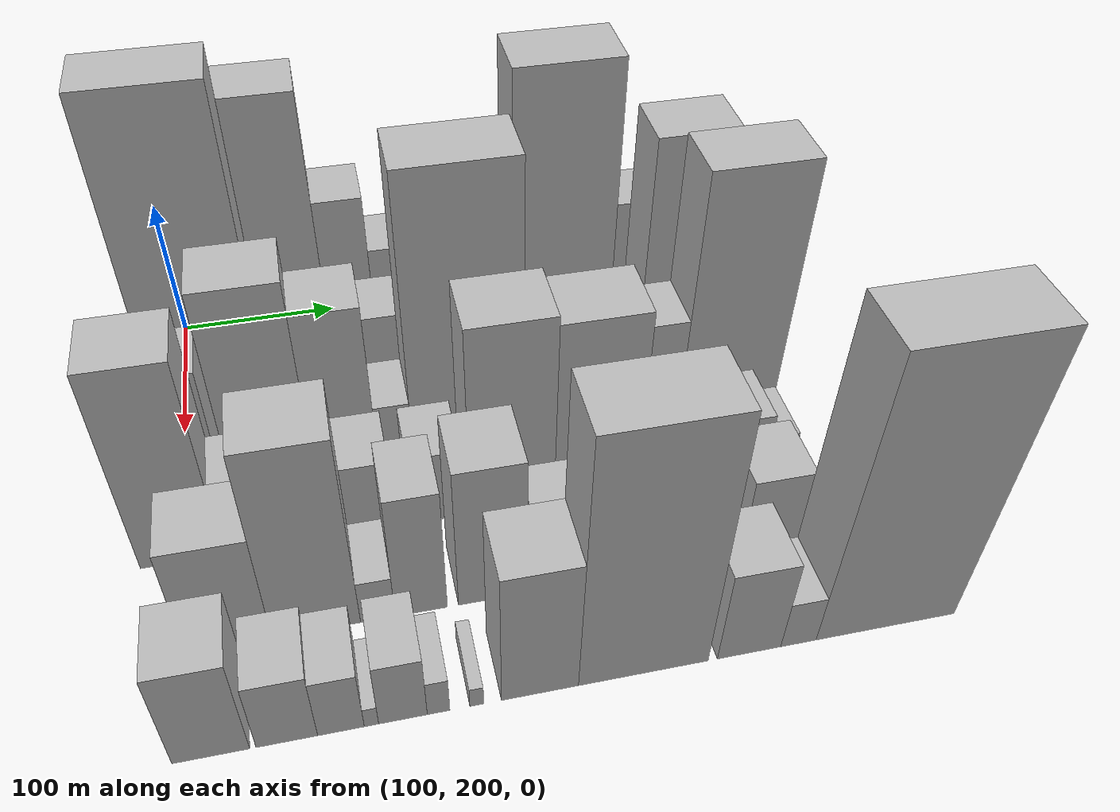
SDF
<sdf version="1.6">
 <world name="default">
  <model name="building_31">
   <static>1</static>
   <pose>100.0000 212.3279 0 0.000000 0.000000 0.000000</pose>
   <link name="link">
    <pose>0 0 24.00 0 0 0</pose>
    <collision name="collision"><geometry><box><size>40.0000 24.6578 48.0000</size></box></geometry></collision>
    <visual name="visual">
     <cast_shadows>0</cast_shadows>
     <geometry><box><size>40.0000 24.6578 48.0000</size></box></geometry>
     <material>
      <script>
       <uri>model://HANNAS_wall/materials/scripts</uri>
       <uri>model://HANNAS_wall/materials/textures</uri>
       <name>vrc/HANNAS_wall</name>
      </script>
     </material>
    </visual>
   </link>
  </model>
  <model name="building_32">
   <static>1</static>
   <pose>100.0000 261.7838 0 0.000000 0.000000 0.000000</pose>
   <link name="link">
    <pose>0 0 90.00 0 0 0</pose>
    <collision name="collision"><geometry><box><size>40.0000 68.2540 180.0000</size></box></geometry></collision>
    <visual name="visual">
     <cast_shadows>0</cast_shadows>
     <geometry><box><size>40.0000 68.2540 180.0000</size></box></geometry>
     <material>
      <script>
       <uri>model://HANNAS_wall/materials/scripts</uri>
       <uri>model://HANNAS_wall/materials/textures</uri>
       <name>vrc/HANNAS_wall</name>
      </script>
     </material>
    </visual>
   </link>
  </model>
  <model name="building_33">
   <static>1</static>
   <pose>100.0000 311.6807 0 0.000000 0.000000 0.000000</pose>
   <link name="link">
    <pose>0 0 51.00 0 0 0</pose>
    <collision name="collision"><geometry><box><size>40.0000 31.5397 102.0000</size></box></geometry></collision>
    <visual name="visual">
     <cast_shadows>0</cast_shadows>
     <geometry><box><size>40.0000 31.5397 102.0000</size></box></geometry>
     <material>
      <script>
       <uri>model://HANNAS_wall/materials/scripts</uri>
       <uri>model://HANNAS_wall/materials/textures</uri>
       <name>vrc/HANNAS_wall</name>
      </script>
     </material>
    </visual>
   </link>
  </model>
  <model name="building_34">
   <static>1</static>
   <pose>100.0000 343.4627 0 0.000000 0.000000 0.000000</pose>
   <link name="link">
    <pose>0 0 30.00 0 0 0</pose>
    <collision name="collision"><geometry><box><size>40.0000 32.0243 60.0000</size></box></geometry></collision>
    <visual name="visual">
     <cast_shadows>0</cast_shadows>
     <geometry><box><size>40.0000 32.0243 60.0000</size></box></geometry>
     <material>
      <script>
       <uri>model://HANNAS_wall/materials/scripts</uri>
       <uri>model://HANNAS_wall/materials/textures</uri>
       <name>vrc/HANNAS_wall</name>
      </script>
     </material>
    </visual>
   </link>
  </model>
  <model name="building_35">
   <static>1</static>
   <pose>100.0000 368.5396 0 0.000000 0.000000 0.000000</pose>
   <link name="link">
    <pose>0 0 16.50 0 0 0</pose>
    <collision name="collision"><geometry><box><size>40.0000 18.1296 33.0000</size></box></geometry></collision>
    <visual name="visual">
     <cast_shadows>0</cast_shadows>
     <geometry><box><size>40.0000 18.1296 33.0000</size></box></geometry>
     <material>
      <script>
       <uri>model://HANNAS_wall/materials/scripts</uri>
       <uri>model://HANNAS_wall/materials/textures</uri>
       <name>vrc/HANNAS_wall</name>
      </script>
     </material>
    </visual>
   </link>
  </model>
  <model name="building_36">
   <static>1</static>
   <pose>100.0000 391.9266 0 0.000000 0.000000 0.000000</pose>
   <link name="link">
    <pose>0 0 13.50 0 0 0</pose>
    <collision name="collision"><geometry><box><size>40.0000 12.6444 27.0000</size></box></geometry></collision>
    <visual name="visual">
     <cast_shadows>0</cast_shadows>
     <geometry><box><size>40.0000 12.6444 27.0000</size></box></geometry>
     <material>
      <script>
       <uri>model://HANNAS_wall/materials/scripts</uri>
       <uri>model://HANNAS_wall/materials/textures</uri>
       <name>vrc/HANNAS_wall</name>
      </script>
     </material>
    </visual>
   </link>
  </model>
  <model name="building_37">
   <static>1</static>
   <pose>100.0000 420.4541 0 0.000000 0.000000 0.000000</pose>
   <link name="link">
    <pose>0 0 31.50 0 0 0</pose>
    <collision name="collision"><geometry><box><size>40.0000 36.4104 63.0000</size></box></geometry></collision>
    <visual name="visual">
     <cast_shadows>0</cast_shadows>
     <geometry><box><size>40.0000 36.4104 63.0000</size></box></geometry>
     <material>
      <script>
       <uri>model://HANNAS_wall/materials/scripts</uri>
       <uri>model://HANNAS_wall/materials/textures</uri>
       <name>vrc/HANNAS_wall</name>
      </script>
     </material>
    </visual>
   </link>
  </model>
  <model name="building_38">
   <static>1</static>
   <pose>100.0000 461.8608 0 0.000000 0.000000 0.000000</pose>
   <link name="link">
    <pose>0 0 57.00 0 0 0</pose>
    <collision name="collision"><geometry><box><size>40.0000 40.4030 114.0000</size></box></geometry></collision>
    <visual name="visual">
     <cast_shadows>0</cast_shadows>
     <geometry><box><size>40.0000 40.4030 114.0000</size></box></geometry>
     <material>
      <script>
       <uri>model://HANNAS_wall/materials/scripts</uri>
       <uri>model://HANNAS_wall/materials/textures</uri>
       <name>vrc/HANNAS_wall</name>
      </script>
     </material>
    </visual>
   </link>
  </model>
  <model name="building_39">
   <static>1</static>
   <pose>100.0000 502.6495 0 0.000000 0.000000 0.000000</pose>
   <link name="link">
    <pose>0 0 36.00 0 0 0</pose>
    <collision name="collision"><geometry><box><size>40.0000 41.1744 72.0000</size></box></geometry></collision>
    <visual name="visual">
     <cast_shadows>0</cast_shadows>
     <geometry><box><size>40.0000 41.1744 72.0000</size></box></geometry>
     <material>
      <script>
       <uri>model://HANNAS_wall/materials/scripts</uri>
       <uri>model://HANNAS_wall/materials/textures</uri>
       <name>vrc/HANNAS_wall</name>
      </script>
     </material>
    </visual>
   </link>
  </model>
  <model name="building_40">
   <static>1</static>
   <pose>100.0000 535.8775 0 0.000000 0.000000 0.000000</pose>
   <link name="link">
    <pose>0 0 22.50 0 0 0</pose>
    <collision name="collision"><geometry><box><size>40.0000 25.2815 45.0000</size></box></geometry></collision>
    <visual name="visual">
     <cast_shadows>0</cast_shadows>
     <geometry><box><size>40.0000 25.2815 45.0000</size></box></geometry>
     <material>
      <script>
       <uri>model://HANNAS_wall/materials/scripts</uri>
       <uri>model://HANNAS_wall/materials/textures</uri>
       <name>vrc/HANNAS_wall</name>
      </script>
     </material>
    </visual>
   </link>
  </model>
  <model name="building_78">
   <static>1</static>
   <pose>160.0000 218.8067 0 0.000000 0.000000 0.000000</pose>
   <link name="link">
    <pose>0 0 112.50 0 0 0</pose>
    <collision name="collision"><geometry><box><size>40.0000 69.5653 225.0000</size></box></geometry></collision>
    <visual name="visual">
     <cast_shadows>0</cast_shadows>
     <geometry><box><size>40.0000 69.5653 225.0000</size></box></geometry>
     <material>
      <script>
       <uri>model://HANNAS_wall/materials/scripts</uri>
       <uri>model://HANNAS_wall/materials/textures</uri>
       <name>vrc/HANNAS_wall</name>
      </script>
     </material>
    </visual>
   </link>
  </model>
  <model name="building_79">
   <static>1</static>
   <pose>160.0000 265.9566 0 0.000000 0.000000 0.000000</pose>
   <link name="link">
    <pose>0 0 21.00 0 0 0</pose>
    <collision name="collision"><geometry><box><size>40.0000 24.7344 42.0000</size></box></geometry></collision>
    <visual name="visual">
     <cast_shadows>0</cast_shadows>
     <geometry><box><size>40.0000 24.7344 42.0000</size></box></geometry>
     <material>
      <script>
       <uri>model://HANNAS_wall/materials/scripts</uri>
       <uri>model://HANNAS_wall/materials/textures</uri>
       <name>vrc/HANNAS_wall</name>
      </script>
     </material>
    </visual>
   </link>
  </model>
  <model name="building_80">
   <static>1</static>
   <pose>160.0000 295.2602 0 0.000000 0.000000 0.000000</pose>
   <link name="link">
    <pose>0 0 28.50 0 0 0</pose>
    <collision name="collision"><geometry><box><size>40.0000 33.8728 57.0000</size></box></geometry></collision>
    <visual name="visual">
     <cast_shadows>0</cast_shadows>
     <geometry><box><size>40.0000 33.8728 57.0000</size></box></geometry>
     <material>
      <script>
       <uri>model://HANNAS_wall/materials/scripts</uri>
       <uri>model://HANNAS_wall/materials/textures</uri>
       <name>vrc/HANNAS_wall</name>
      </script>
     </material>
    </visual>
   </link>
  </model>
  <model name="building_81">
   <static>1</static>
   <pose>160.0000 327.9938 0 0.000000 0.000000 0.000000</pose>
   <link name="link">
    <pose>0 0 27.00 0 0 0</pose>
    <collision name="collision"><geometry><box><size>40.0000 31.5945 54.0000</size></box></geometry></collision>
    <visual name="visual">
     <cast_shadows>0</cast_shadows>
     <geometry><box><size>40.0000 31.5945 54.0000</size></box></geometry>
     <material>
      <script>
       <uri>model://HANNAS_wall/materials/scripts</uri>
       <uri>model://HANNAS_wall/materials/textures</uri>
       <name>vrc/HANNAS_wall</name>
      </script>
     </material>
    </visual>
   </link>
  </model>
  <model name="building_82">
   <static>1</static>
   <pose>160.0000 369.8762 0 0.000000 0.000000 0.000000</pose>
   <link name="link">
    <pose>0 0 39.00 0 0 0</pose>
    <collision name="collision"><geometry><box><size>40.0000 40.1702 78.0000</size></box></geometry></collision>
    <visual name="visual">
     <cast_shadows>0</cast_shadows>
     <geometry><box><size>40.0000 40.1702 78.0000</size></box></geometry>
     <material>
      <script>
       <uri>model://HANNAS_wall/materials/scripts</uri>
       <uri>model://HANNAS_wall/materials/textures</uri>
       <name>vrc/HANNAS_wall</name>
      </script>
     </material>
    </visual>
   </link>
  </model>
  <model name="building_83">
   <static>1</static>
   <pose>160.0000 400.6297 0 0.000000 0.000000 0.000000</pose>
   <link name="link">
    <pose>0 0 19.50 0 0 0</pose>
    <collision name="collision"><geometry><box><size>40.0000 21.3368 39.0000</size></box></geometry></collision>
    <visual name="visual">
     <cast_shadows>0</cast_shadows>
     <geometry><box><size>40.0000 21.3368 39.0000</size></box></geometry>
     <material>
      <script>
       <uri>model://HANNAS_wall/materials/scripts</uri>
       <uri>model://HANNAS_wall/materials/textures</uri>
       <name>vrc/HANNAS_wall</name>
      </script>
     </material>
    </visual>
   </link>
  </model>
  <model name="building_84">
   <static>1</static>
   <pose>160.0000 443.4979 0 0.000000 0.000000 0.000000</pose>
   <link name="link">
    <pose>0 0 106.50 0 0 0</pose>
    <collision name="collision"><geometry><box><size>40.0000 64.3995 213.0000</size></box></geometry></collision>
    <visual name="visual">
     <cast_shadows>0</cast_shadows>
     <geometry><box><size>40.0000 64.3995 213.0000</size></box></geometry>
     <material>
      <script>
       <uri>model://HANNAS_wall/materials/scripts</uri>
       <uri>model://HANNAS_wall/materials/textures</uri>
       <name>vrc/HANNAS_wall</name>
      </script>
     </material>
    </visual>
   </link>
  </model>
  <model name="building_85">
   <static>1</static>
   <pose>160.0000 488.1386 0 0.000000 0.000000 0.000000</pose>
   <link name="link">
    <pose>0 0 12.00 0 0 0</pose>
    <collision name="collision"><geometry><box><size>40.0000 10.8820 24.0000</size></box></geometry></collision>
    <visual name="visual">
     <cast_shadows>0</cast_shadows>
     <geometry><box><size>40.0000 10.8820 24.0000</size></box></geometry>
     <material>
      <script>
       <uri>model://HANNAS_wall/materials/scripts</uri>
       <uri>model://HANNAS_wall/materials/textures</uri>
       <name>vrc/HANNAS_wall</name>
      </script>
     </material>
    </visual>
   </link>
  </model>
  <model name="building_86">
   <static>1</static>
   <pose>160.0000 523.9547 0 0.000000 0.000000 0.000000</pose>
   <link name="link">
    <pose>0 0 79.50 0 0 0</pose>
    <collision name="collision"><geometry><box><size>40.0000 52.7502 159.0000</size></box></geometry></collision>
    <visual name="visual">
     <cast_shadows>0</cast_shadows>
     <geometry><box><size>40.0000 52.7502 159.0000</size></box></geometry>
     <material>
      <script>
       <uri>model://HANNAS_wall/materials/scripts</uri>
       <uri>model://HANNAS_wall/materials/textures</uri>
       <name>vrc/HANNAS_wall</name>
      </script>
     </material>
    </visual>
   </link>
  </model>
  <model name="building_131">
   <static>1</static>
   <pose>220.0000 198.3036 0 0.000000 0.000000 0.000000</pose>
   <link name="link">
    <pose>0 0 42.00 0 0 0</pose>
    <collision name="collision"><geometry><box><size>40.0000 45.2945 84.0000</size></box></geometry></collision>
    <visual name="visual">
     <cast_shadows>0</cast_shadows>
     <geometry><box><size>40.0000 45.2945 84.0000</size></box></geometry>
     <material>
      <script>
       <uri>model://HANNAS_wall/materials/scripts</uri>
       <uri>model://HANNAS_wall/materials/textures</uri>
       <name>vrc/HANNAS_wall</name>
      </script>
     </material>
    </visual>
   </link>
  </model>
  <model name="building_132">
   <static>1</static>
   <pose>220.0000 250.7997 0 0.000000 0.000000 0.000000</pose>
   <link name="link">
    <pose>0 0 69.00 0 0 0</pose>
    <collision name="collision"><geometry><box><size>40.0000 49.6976 138.0000</size></box></geometry></collision>
    <visual name="visual">
     <cast_shadows>0</cast_shadows>
     <geometry><box><size>40.0000 49.6976 138.0000</size></box></geometry>
     <material>
      <script>
       <uri>model://HANNAS_wall/materials/scripts</uri>
       <uri>model://HANNAS_wall/materials/textures</uri>
       <name>vrc/HANNAS_wall</name>
      </script>
     </material>
    </visual>
   </link>
  </model>
  <model name="building_133">
   <static>1</static>
   <pose>220.0000 295.0781 0 0.000000 0.000000 0.000000</pose>
   <link name="link">
    <pose>0 0 57.00 0 0 0</pose>
    <collision name="collision"><geometry><box><size>40.0000 38.8592 114.0000</size></box></geometry></collision>
    <visual name="visual">
     <cast_shadows>0</cast_shadows>
     <geometry><box><size>40.0000 38.8592 114.0000</size></box></geometry>
     <material>
      <script>
       <uri>model://HANNAS_wall/materials/scripts</uri>
       <uri>model://HANNAS_wall/materials/textures</uri>
       <name>vrc/HANNAS_wall</name>
      </script>
     </material>
    </visual>
   </link>
  </model>
  <model name="building_134">
   <static>1</static>
   <pose>220.0000 325.2966 0 0.000000 0.000000 0.000000</pose>
   <link name="link">
    <pose>0 0 18.00 0 0 0</pose>
    <collision name="collision"><geometry><box><size>40.0000 21.5778 36.0000</size></box></geometry></collision>
    <visual name="visual">
     <cast_shadows>0</cast_shadows>
     <geometry><box><size>40.0000 21.5778 36.0000</size></box></geometry>
     <material>
      <script>
       <uri>model://HANNAS_wall/materials/scripts</uri>
       <uri>model://HANNAS_wall/materials/textures</uri>
       <name>vrc/HANNAS_wall</name>
      </script>
     </material>
    </visual>
   </link>
  </model>
  <model name="building_135">
   <static>1</static>
   <pose>220.0000 370.8183 0 0.000000 0.000000 0.000000</pose>
   <link name="link">
    <pose>0 0 99.00 0 0 0</pose>
    <collision name="collision"><geometry><box><size>40.0000 69.4655 198.0000</size></box></geometry></collision>
    <visual name="visual">
     <cast_shadows>0</cast_shadows>
     <geometry><box><size>40.0000 69.4655 198.0000</size></box></geometry>
     <material>
      <script>
       <uri>model://HANNAS_wall/materials/scripts</uri>
       <uri>model://HANNAS_wall/materials/textures</uri>
       <name>vrc/HANNAS_wall</name>
      </script>
     </material>
    </visual>
   </link>
  </model>
  <model name="building_136">
   <static>1</static>
   <pose>220.0000 420.2482 0 0.000000 0.000000 0.000000</pose>
   <link name="link">
    <pose>0 0 13.50 0 0 0</pose>
    <collision name="collision"><geometry><box><size>40.0000 13.3944 27.0000</size></box></geometry></collision>
    <visual name="visual">
     <cast_shadows>0</cast_shadows>
     <geometry><box><size>40.0000 13.3944 27.0000</size></box></geometry>
     <material>
      <script>
       <uri>model://HANNAS_wall/materials/scripts</uri>
       <uri>model://HANNAS_wall/materials/textures</uri>
       <name>vrc/HANNAS_wall</name>
      </script>
     </material>
    </visual>
   </link>
  </model>
  <model name="building_137">
   <static>1</static>
   <pose>220.0000 432.6685 0 0.000000 0.000000 0.000000</pose>
   <link name="link">
    <pose>0 0 13.50 0 0 0</pose>
    <collision name="collision"><geometry><box><size>40.0000 11.4462 27.0000</size></box></geometry></collision>
    <visual name="visual">
     <cast_shadows>0</cast_shadows>
     <geometry><box><size>40.0000 11.4462 27.0000</size></box></geometry>
     <material>
      <script>
       <uri>model://HANNAS_wall/materials/scripts</uri>
       <uri>model://HANNAS_wall/materials/textures</uri>
       <name>vrc/HANNAS_wall</name>
      </script>
     </material>
    </visual>
   </link>
  </model>
  <model name="building_138">
   <static>1</static>
   <pose>220.0000 455.6580 0 0.000000 0.000000 0.000000</pose>
   <link name="link">
    <pose>0 0 22.50 0 0 0</pose>
    <collision name="collision"><geometry><box><size>40.0000 22.5326 45.0000</size></box></geometry></collision>
    <visual name="visual">
     <cast_shadows>0</cast_shadows>
     <geometry><box><size>40.0000 22.5326 45.0000</size></box></geometry>
     <material>
      <script>
       <uri>model://HANNAS_wall/materials/scripts</uri>
       <uri>model://HANNAS_wall/materials/textures</uri>
       <name>vrc/HANNAS_wall</name>
      </script>
     </material>
    </visual>
   </link>
  </model>
  <model name="building_139">
   <static>1</static>
   <pose>220.0000 486.9075 0 0.000000 0.000000 0.000000</pose>
   <link name="link">
    <pose>0 0 34.50 0 0 0</pose>
    <collision name="collision"><geometry><box><size>40.0000 39.9665 69.0000</size></box></geometry></collision>
    <visual name="visual">
     <cast_shadows>0</cast_shadows>
     <geometry><box><size>40.0000 39.9665 69.0000</size></box></geometry>
     <material>
      <script>
       <uri>model://HANNAS_wall/materials/scripts</uri>
       <uri>model://HANNAS_wall/materials/textures</uri>
       <name>vrc/HANNAS_wall</name>
      </script>
     </material>
    </visual>
   </link>
  </model>
  <model name="building_140">
   <static>1</static>
   <pose>220.0000 539.2317 0 0.000000 0.000000 0.000000</pose>
   <link name="link">
    <pose>0 0 87.00 0 0 0</pose>
    <collision name="collision"><geometry><box><size>40.0000 64.6820 174.0000</size></box></geometry></collision>
    <visual name="visual">
     <cast_shadows>0</cast_shadows>
     <geometry><box><size>40.0000 64.6820 174.0000</size></box></geometry>
     <material>
      <script>
       <uri>model://HANNAS_wall/materials/scripts</uri>
       <uri>model://HANNAS_wall/materials/textures</uri>
       <name>vrc/HANNAS_wall</name>
      </script>
     </material>
    </visual>
   </link>
  </model>
  <model name="building_185">
   <static>1</static>
   <pose>280.0000 199.0796 0 0.000000 0.000000 0.000000</pose>
   <link name="link">
    <pose>0 0 73.50 0 0 0</pose>
    <collision name="collision"><geometry><box><size>40.0000 45.1095 147.0000</size></box></geometry></collision>
    <visual name="visual">
     <cast_shadows>0</cast_shadows>
     <geometry><box><size>40.0000 45.1095 147.0000</size></box></geometry>
     <material>
      <script>
       <uri>model://HANNAS_wall/materials/scripts</uri>
       <uri>model://HANNAS_wall/materials/textures</uri>
       <name>vrc/HANNAS_wall</name>
      </script>
     </material>
    </visual>
   </link>
  </model>
  <model name="building_186">
   <static>1</static>
   <pose>280.0000 237.3102 0 0.000000 0.000000 0.000000</pose>
   <link name="link">
    <pose>0 0 27.00 0 0 0</pose>
    <collision name="collision"><geometry><box><size>40.0000 31.3518 54.0000</size></box></geometry></collision>
    <visual name="visual">
     <cast_shadows>0</cast_shadows>
     <geometry><box><size>40.0000 31.3518 54.0000</size></box></geometry>
     <material>
      <script>
       <uri>model://HANNAS_wall/materials/scripts</uri>
       <uri>model://HANNAS_wall/materials/textures</uri>
       <name>vrc/HANNAS_wall</name>
      </script>
     </material>
    </visual>
   </link>
  </model>
  <model name="building_187">
   <static>1</static>
   <pose>280.0000 269.2365 0 0.000000 0.000000 0.000000</pose>
   <link name="link">
    <pose>0 0 31.50 0 0 0</pose>
    <collision name="collision"><geometry><box><size>40.0000 32.5008 63.0000</size></box></geometry></collision>
    <visual name="visual">
     <cast_shadows>0</cast_shadows>
     <geometry><box><size>40.0000 32.5008 63.0000</size></box></geometry>
     <material>
      <script>
       <uri>model://HANNAS_wall/materials/scripts</uri>
       <uri>model://HANNAS_wall/materials/textures</uri>
       <name>vrc/HANNAS_wall</name>
      </script>
     </material>
    </visual>
   </link>
  </model>
  <model name="building_188">
   <static>1</static>
   <pose>280.0000 301.5093 0 0.000000 0.000000 0.000000</pose>
   <link name="link">
    <pose>0 0 27.00 0 0 0</pose>
    <collision name="collision"><geometry><box><size>40.0000 32.0447 54.0000</size></box></geometry></collision>
    <visual name="visual">
     <cast_shadows>0</cast_shadows>
     <geometry><box><size>40.0000 32.0447 54.0000</size></box></geometry>
     <material>
      <script>
       <uri>model://HANNAS_wall/materials/scripts</uri>
       <uri>model://HANNAS_wall/materials/textures</uri>
       <name>vrc/HANNAS_wall</name>
      </script>
     </material>
    </visual>
   </link>
  </model>
  <model name="building_189">
   <static>1</static>
   <pose>280.0000 342.3491 0 0.000000 0.000000 0.000000</pose>
   <link name="link">
    <pose>0 0 27.00 0 0 0</pose>
    <collision name="collision"><geometry><box><size>40.0000 29.6349 54.0000</size></box></geometry></collision>
    <visual name="visual">
     <cast_shadows>0</cast_shadows>
     <geometry><box><size>40.0000 29.6349 54.0000</size></box></geometry>
     <material>
      <script>
       <uri>model://HANNAS_wall/materials/scripts</uri>
       <uri>model://HANNAS_wall/materials/textures</uri>
       <name>vrc/HANNAS_wall</name>
      </script>
     </material>
    </visual>
   </link>
  </model>
  <model name="building_190">
   <static>1</static>
   <pose>280.0000 385.9171 0 0.000000 0.000000 0.000000</pose>
   <link name="link">
    <pose>0 0 70.50 0 0 0</pose>
    <collision name="collision"><geometry><box><size>40.0000 49.5011 141.0000</size></box></geometry></collision>
    <visual name="visual">
     <cast_shadows>0</cast_shadows>
     <geometry><box><size>40.0000 49.5011 141.0000</size></box></geometry>
     <material>
      <script>
       <uri>model://HANNAS_wall/materials/scripts</uri>
       <uri>model://HANNAS_wall/materials/textures</uri>
       <name>vrc/HANNAS_wall</name>
      </script>
     </material>
    </visual>
   </link>
  </model>
  <model name="building_191">
   <static>1</static>
   <pose>280.0000 435.7266 0 0.000000 0.000000 0.000000</pose>
   <link name="link">
    <pose>0 0 67.50 0 0 0</pose>
    <collision name="collision"><geometry><box><size>40.0000 50.1179 135.0000</size></box></geometry></collision>
    <visual name="visual">
     <cast_shadows>0</cast_shadows>
     <geometry><box><size>40.0000 50.1179 135.0000</size></box></geometry>
     <material>
      <script>
       <uri>model://HANNAS_wall/materials/scripts</uri>
       <uri>model://HANNAS_wall/materials/textures</uri>
       <name>vrc/HANNAS_wall</name>
      </script>
     </material>
    </visual>
   </link>
  </model>
  <model name="building_192">
   <static>1</static>
   <pose>280.0000 474.1381 0 0.000000 0.000000 0.000000</pose>
   <link name="link">
    <pose>0 0 25.50 0 0 0</pose>
    <collision name="collision"><geometry><box><size>40.0000 26.7050 51.0000</size></box></geometry></collision>
    <visual name="visual">
     <cast_shadows>0</cast_shadows>
     <geometry><box><size>40.0000 26.7050 51.0000</size></box></geometry>
     <material>
      <script>
       <uri>model://HANNAS_wall/materials/scripts</uri>
       <uri>model://HANNAS_wall/materials/textures</uri>
       <name>vrc/HANNAS_wall</name>
      </script>
     </material>
    </visual>
   </link>
  </model>
  <model name="building_193">
   <static>1</static>
   <pose>280.0000 507.4287 0 0.000000 0.000000 0.000000</pose>
   <link name="link">
    <pose>0 0 21.00 0 0 0</pose>
    <collision name="collision"><geometry><box><size>40.0000 21.8763 42.0000</size></box></geometry></collision>
    <visual name="visual">
     <cast_shadows>0</cast_shadows>
     <geometry><box><size>40.0000 21.8763 42.0000</size></box></geometry>
     <material>
      <script>
       <uri>model://HANNAS_wall/materials/scripts</uri>
       <uri>model://HANNAS_wall/materials/textures</uri>
       <name>vrc/HANNAS_wall</name>
      </script>
     </material>
    </visual>
   </link>
  </model>
  <model name="building_194">
   <static>1</static>
   <pose>280.0000 530.1100 0 0.000000 0.000000 0.000000</pose>
   <link name="link">
    <pose>0 0 21.00 0 0 0</pose>
    <collision name="collision"><geometry><box><size>40.0000 23.4862 42.0000</size></box></geometry></collision>
    <visual name="visual">
     <cast_shadows>0</cast_shadows>
     <geometry><box><size>40.0000 23.4862 42.0000</size></box></geometry>
     <material>
      <script>
       <uri>model://HANNAS_wall/materials/scripts</uri>
       <uri>model://HANNAS_wall/materials/textures</uri>
       <name>vrc/HANNAS_wall</name>
      </script>
     </material>
    </visual>
   </link>
  </model>
  <model name="building_195">
   <static>1</static>
   <pose>280.0000 553.9950 0 0.000000 0.000000 0.000000</pose>
   <link name="link">
    <pose>0 0 12.00 0 0 0</pose>
    <collision name="collision"><geometry><box><size>40.0000 10.2839 24.0000</size></box></geometry></collision>
    <visual name="visual">
     <cast_shadows>0</cast_shadows>
     <geometry><box><size>40.0000 10.2839 24.0000</size></box></geometry>
     <material>
      <script>
       <uri>model://HANNAS_wall/materials/scripts</uri>
       <uri>model://HANNAS_wall/materials/textures</uri>
       <name>vrc/HANNAS_wall</name>
      </script>
     </material>
    </visual>
   </link>
  </model>
  <model name="building_247">
   <static>1</static>
   <pose>340.0000 222.9355 0 0.000000 0.000000 0.000000</pose>
   <link name="link">
    <pose>0 0 40.50 0 0 0</pose>
    <collision name="collision"><geometry><box><size>40.0000 44.2554 81.0000</size></box></geometry></collision>
    <visual name="visual">
     <cast_shadows>0</cast_shadows>
     <geometry><box><size>40.0000 44.2554 81.0000</size></box></geometry>
     <material>
      <script>
       <uri>model://HANNAS_wall/materials/scripts</uri>
       <uri>model://HANNAS_wall/materials/textures</uri>
       <name>vrc/HANNAS_wall</name>
      </script>
     </material>
    </visual>
   </link>
  </model>
  <model name="building_248">
   <static>1</static>
   <pose>340.0000 268.2361 0 0.000000 0.000000 0.000000</pose>
   <link name="link">
    <pose>0 0 70.50 0 0 0</pose>
    <collision name="collision"><geometry><box><size>40.0000 46.3458 141.0000</size></box></geometry></collision>
    <visual name="visual">
     <cast_shadows>0</cast_shadows>
     <geometry><box><size>40.0000 46.3458 141.0000</size></box></geometry>
     <material>
      <script>
       <uri>model://HANNAS_wall/materials/scripts</uri>
       <uri>model://HANNAS_wall/materials/textures</uri>
       <name>vrc/HANNAS_wall</name>
      </script>
     </material>
    </visual>
   </link>
  </model>
  <model name="building_249">
   <static>1</static>
   <pose>340.0000 300.5998 0 0.000000 0.000000 0.000000</pose>
   <link name="link">
    <pose>0 0 16.50 0 0 0</pose>
    <collision name="collision"><geometry><box><size>40.0000 18.3816 33.0000</size></box></geometry></collision>
    <visual name="visual">
     <cast_shadows>0</cast_shadows>
     <geometry><box><size>40.0000 18.3816 33.0000</size></box></geometry>
     <material>
      <script>
       <uri>model://HANNAS_wall/materials/scripts</uri>
       <uri>model://HANNAS_wall/materials/textures</uri>
       <name>vrc/HANNAS_wall</name>
      </script>
     </material>
    </visual>
   </link>
  </model>
  <model name="building_250">
   <static>1</static>
   <pose>340.0000 323.7877 0 0.000000 0.000000 0.000000</pose>
   <link name="link">
    <pose>0 0 46.50 0 0 0</pose>
    <collision name="collision"><geometry><box><size>40.0000 27.9942 93.0000</size></box></geometry></collision>
    <visual name="visual">
     <cast_shadows>0</cast_shadows>
     <geometry><box><size>40.0000 27.9942 93.0000</size></box></geometry>
     <material>
      <script>
       <uri>model://HANNAS_wall/materials/scripts</uri>
       <uri>model://HANNAS_wall/materials/textures</uri>
       <name>vrc/HANNAS_wall</name>
      </script>
     </material>
    </visual>
   </link>
  </model>
  <model name="building_251">
   <static>1</static>
   <pose>340.0000 362.5060 0 0.000000 0.000000 0.000000</pose>
   <link name="link">
    <pose>0 0 52.50 0 0 0</pose>
    <collision name="collision"><geometry><box><size>40.0000 37.4425 105.0000</size></box></geometry></collision>
    <visual name="visual">
     <cast_shadows>0</cast_shadows>
     <geometry><box><size>40.0000 37.4425 105.0000</size></box></geometry>
     <material>
      <script>
       <uri>model://HANNAS_wall/materials/scripts</uri>
       <uri>model://HANNAS_wall/materials/textures</uri>
       <name>vrc/HANNAS_wall</name>
      </script>
     </material>
    </visual>
   </link>
  </model>
  <model name="building_252">
   <static>1</static>
   <pose>340.0000 401.6836 0 0.000000 0.000000 0.000000</pose>
   <link name="link">
    <pose>0 0 28.50 0 0 0</pose>
    <collision name="collision"><geometry><box><size>40.0000 32.9127 57.0000</size></box></geometry></collision>
    <visual name="visual">
     <cast_shadows>0</cast_shadows>
     <geometry><box><size>40.0000 32.9127 57.0000</size></box></geometry>
     <material>
      <script>
       <uri>model://HANNAS_wall/materials/scripts</uri>
       <uri>model://HANNAS_wall/materials/textures</uri>
       <name>vrc/HANNAS_wall</name>
      </script>
     </material>
    </visual>
   </link>
  </model>
  <model name="building_253">
   <static>1</static>
   <pose>340.0000 429.9576 0 0.000000 0.000000 0.000000</pose>
   <link name="link">
    <pose>0 0 22.50 0 0 0</pose>
    <collision name="collision"><geometry><box><size>40.0000 23.6354 45.0000</size></box></geometry></collision>
    <visual name="visual">
     <cast_shadows>0</cast_shadows>
     <geometry><box><size>40.0000 23.6354 45.0000</size></box></geometry>
     <material>
      <script>
       <uri>model://HANNAS_wall/materials/scripts</uri>
       <uri>model://HANNAS_wall/materials/textures</uri>
       <name>vrc/HANNAS_wall</name>
      </script>
     </material>
    </visual>
   </link>
  </model>
  <model name="building_254">
   <static>1</static>
   <pose>340.0000 450.5697 0 0.000000 0.000000 0.000000</pose>
   <link name="link">
    <pose>0 0 16.50 0 0 0</pose>
    <collision name="collision"><geometry><box><size>40.0000 17.5888 33.0000</size></box></geometry></collision>
    <visual name="visual">
     <cast_shadows>0</cast_shadows>
     <geometry><box><size>40.0000 17.5888 33.0000</size></box></geometry>
     <material>
      <script>
       <uri>model://HANNAS_wall/materials/scripts</uri>
       <uri>model://HANNAS_wall/materials/textures</uri>
       <name>vrc/HANNAS_wall</name>
      </script>
     </material>
    </visual>
   </link>
  </model>
  <model name="building_255">
   <static>1</static>
   <pose>340.0000 467.9935 0 0.000000 0.000000 0.000000</pose>
   <link name="link">
    <pose>0 0 15.00 0 0 0</pose>
    <collision name="collision"><geometry><box><size>40.0000 17.2587 30.0000</size></box></geometry></collision>
    <visual name="visual">
     <cast_shadows>0</cast_shadows>
     <geometry><box><size>40.0000 17.2587 30.0000</size></box></geometry>
     <material>
      <script>
       <uri>model://HANNAS_wall/materials/scripts</uri>
       <uri>model://HANNAS_wall/materials/textures</uri>
       <name>vrc/HANNAS_wall</name>
      </script>
     </material>
    </visual>
   </link>
  </model>
  <model name="building_256">
   <static>1</static>
   <pose>340.0000 485.6016 0 0.000000 0.000000 0.000000</pose>
   <link name="link">
    <pose>0 0 16.50 0 0 0</pose>
    <collision name="collision"><geometry><box><size>40.0000 17.9575 33.0000</size></box></geometry></collision>
    <visual name="visual">
     <cast_shadows>0</cast_shadows>
     <geometry><box><size>40.0000 17.9575 33.0000</size></box></geometry>
     <material>
      <script>
       <uri>model://HANNAS_wall/materials/scripts</uri>
       <uri>model://HANNAS_wall/materials/textures</uri>
       <name>vrc/HANNAS_wall</name>
      </script>
     </material>
    </visual>
   </link>
  </model>
  <model name="building_257">
   <static>1</static>
   <pose>340.0000 498.9394 0 0.000000 0.000000 0.000000</pose>
   <link name="link">
    <pose>0 0 10.50 0 0 0</pose>
    <collision name="collision"><geometry><box><size>40.0000 8.7180 21.0000</size></box></geometry></collision>
    <visual name="visual">
     <cast_shadows>0</cast_shadows>
     <geometry><box><size>40.0000 8.7180 21.0000</size></box></geometry>
     <material>
      <script>
       <uri>model://HANNAS_wall/materials/scripts</uri>
       <uri>model://HANNAS_wall/materials/textures</uri>
       <name>vrc/HANNAS_wall</name>
      </script>
     </material>
    </visual>
   </link>
  </model>
  <model name="building_258">
   <static>1</static>
   <pose>340.0000 520.7618 0 0.000000 0.000000 0.000000</pose>
   <link name="link">
    <pose>0 0 30.00 0 0 0</pose>
    <collision name="collision"><geometry><box><size>40.0000 34.9270 60.0000</size></box></geometry></collision>
    <visual name="visual">
     <cast_shadows>0</cast_shadows>
     <geometry><box><size>40.0000 34.9270 60.0000</size></box></geometry>
     <material>
      <script>
       <uri>model://HANNAS_wall/materials/scripts</uri>
       <uri>model://HANNAS_wall/materials/textures</uri>
       <name>vrc/HANNAS_wall</name>
      </script>
     </material>
    </visual>
   </link>
  </model>
  <model name="building_259">
   <static>1</static>
   <pose>340.0000 541.9178 0 0.000000 0.000000 0.000000</pose>
   <link name="link">
    <pose>0 0 9.00 0 0 0</pose>
    <collision name="collision"><geometry><box><size>40.0000 7.3848 18.0000</size></box></geometry></collision>
    <visual name="visual">
     <cast_shadows>0</cast_shadows>
     <geometry><box><size>40.0000 7.3848 18.0000</size></box></geometry>
     <material>
      <script>
       <uri>model://HANNAS_wall/materials/scripts</uri>
       <uri>model://HANNAS_wall/materials/textures</uri>
       <name>vrc/HANNAS_wall</name>
      </script>
     </material>
    </visual>
   </link>
  </model>
  <model name="building_303">
   <static>1</static>
   <pose>400.0000 213.1776 0 0.000000 0.000000 0.000000</pose>
   <link name="link">
    <pose>0 0 36.00 0 0 0</pose>
    <collision name="collision"><geometry><box><size>40.0000 36.6111 72.0000</size></box></geometry></collision>
    <visual name="visual">
     <cast_shadows>0</cast_shadows>
     <geometry><box><size>40.0000 36.6111 72.0000</size></box></geometry>
     <material>
      <script>
       <uri>model://HANNAS_wall/materials/scripts</uri>
       <uri>model://HANNAS_wall/materials/textures</uri>
       <name>vrc/HANNAS_wall</name>
      </script>
     </material>
    </visual>
   </link>
  </model>
  <model name="building_304">
   <static>1</static>
   <pose>400.0000 249.2438 0 0.000000 0.000000 0.000000</pose>
   <link name="link">
    <pose>0 0 25.50 0 0 0</pose>
    <collision name="collision"><geometry><box><size>40.0000 29.5213 51.0000</size></box></geometry></collision>
    <visual name="visual">
     <cast_shadows>0</cast_shadows>
     <geometry><box><size>40.0000 29.5213 51.0000</size></box></geometry>
     <material>
      <script>
       <uri>model://HANNAS_wall/materials/scripts</uri>
       <uri>model://HANNAS_wall/materials/textures</uri>
       <name>vrc/HANNAS_wall</name>
      </script>
     </material>
    </visual>
   </link>
  </model>
  <model name="building_305">
   <static>1</static>
   <pose>400.0000 275.3490 0 0.000000 0.000000 0.000000</pose>
   <link name="link">
    <pose>0 0 22.50 0 0 0</pose>
    <collision name="collision"><geometry><box><size>40.0000 22.6891 45.0000</size></box></geometry></collision>
    <visual name="visual">
     <cast_shadows>0</cast_shadows>
     <geometry><box><size>40.0000 22.6891 45.0000</size></box></geometry>
     <material>
      <script>
       <uri>model://HANNAS_wall/materials/scripts</uri>
       <uri>model://HANNAS_wall/materials/textures</uri>
       <name>vrc/HANNAS_wall</name>
      </script>
     </material>
    </visual>
   </link>
  </model>
  <model name="building_306">
   <static>1</static>
   <pose>400.0000 290.2004 0 0.000000 0.000000 0.000000</pose>
   <link name="link">
    <pose>0 0 7.50 0 0 0</pose>
    <collision name="collision"><geometry><box><size>40.0000 7.0138 15.0000</size></box></geometry></collision>
    <visual name="visual">
     <cast_shadows>0</cast_shadows>
     <geometry><box><size>40.0000 7.0138 15.0000</size></box></geometry>
     <material>
      <script>
       <uri>model://HANNAS_wall/materials/scripts</uri>
       <uri>model://HANNAS_wall/materials/textures</uri>
       <name>vrc/HANNAS_wall</name>
      </script>
     </material>
    </visual>
   </link>
  </model>
  <model name="building_307">
   <static>1</static>
   <pose>400.0000 305.7355 0 0.000000 0.000000 0.000000</pose>
   <link name="link">
    <pose>0 0 24.00 0 0 0</pose>
    <collision name="collision"><geometry><box><size>40.0000 24.0564 48.0000</size></box></geometry></collision>
    <visual name="visual">
     <cast_shadows>0</cast_shadows>
     <geometry><box><size>40.0000 24.0564 48.0000</size></box></geometry>
     <material>
      <script>
       <uri>model://HANNAS_wall/materials/scripts</uri>
       <uri>model://HANNAS_wall/materials/textures</uri>
       <name>vrc/HANNAS_wall</name>
      </script>
     </material>
    </visual>
   </link>
  </model>
  <model name="building_308">
   <static>1</static>
   <pose>400.0000 323.4075 0 0.000000 0.000000 0.000000</pose>
   <link name="link">
    <pose>0 0 13.50 0 0 0</pose>
    <collision name="collision"><geometry><box><size>40.0000 11.2877 27.0000</size></box></geometry></collision>
    <visual name="visual">
     <cast_shadows>0</cast_shadows>
     <geometry><box><size>40.0000 11.2877 27.0000</size></box></geometry>
     <material>
      <script>
       <uri>model://HANNAS_wall/materials/scripts</uri>
       <uri>model://HANNAS_wall/materials/textures</uri>
       <name>vrc/HANNAS_wall</name>
      </script>
     </material>
    </visual>
   </link>
  </model>
  <model name="building_309">
   <static>1</static>
   <pose>400.0000 342.5620 0 0.000000 0.000000 0.000000</pose>
   <link name="link">
    <pose>0 0 7.50 0 0 0</pose>
    <collision name="collision"><geometry><box><size>40.0000 7.0213 15.0000</size></box></geometry></collision>
    <visual name="visual">
     <cast_shadows>0</cast_shadows>
     <geometry><box><size>40.0000 7.0213 15.0000</size></box></geometry>
     <material>
      <script>
       <uri>model://HANNAS_wall/materials/scripts</uri>
       <uri>model://HANNAS_wall/materials/textures</uri>
       <name>vrc/HANNAS_wall</name>
      </script>
     </material>
    </visual>
   </link>
  </model>
  <model name="building_310">
   <static>1</static>
   <pose>400.0000 374.8314 0 0.000000 0.000000 0.000000</pose>
   <link name="link">
    <pose>0 0 49.50 0 0 0</pose>
    <collision name="collision"><geometry><box><size>40.0000 39.5173 99.0000</size></box></geometry></collision>
    <visual name="visual">
     <cast_shadows>0</cast_shadows>
     <geometry><box><size>40.0000 39.5173 99.0000</size></box></geometry>
     <material>
      <script>
       <uri>model://HANNAS_wall/materials/scripts</uri>
       <uri>model://HANNAS_wall/materials/textures</uri>
       <name>vrc/HANNAS_wall</name>
      </script>
     </material>
    </visual>
   </link>
  </model>
  <model name="building_311">
   <static>1</static>
   <pose>400.0000 428.8830 0 0.000000 0.000000 0.000000</pose>
   <link name="link">
    <pose>0 0 91.50 0 0 0</pose>
    <collision name="collision"><geometry><box><size>40.0000 68.5861 183.0000</size></box></geometry></collision>
    <visual name="visual">
     <cast_shadows>0</cast_shadows>
     <geometry><box><size>40.0000 68.5861 183.0000</size></box></geometry>
     <material>
      <script>
       <uri>model://HANNAS_wall/materials/scripts</uri>
       <uri>model://HANNAS_wall/materials/textures</uri>
       <name>vrc/HANNAS_wall</name>
      </script>
     </material>
    </visual>
   </link>
  </model>
  <model name="building_312">
   <static>1</static>
   <pose>400.0000 485.4330 0 0.000000 0.000000 0.000000</pose>
   <link name="link">
    <pose>0 0 34.50 0 0 0</pose>
    <collision name="collision"><geometry><box><size>40.0000 34.5138 69.0000</size></box></geometry></collision>
    <visual name="visual">
     <cast_shadows>0</cast_shadows>
     <geometry><box><size>40.0000 34.5138 69.0000</size></box></geometry>
     <material>
      <script>
       <uri>model://HANNAS_wall/materials/scripts</uri>
       <uri>model://HANNAS_wall/materials/textures</uri>
       <name>vrc/HANNAS_wall</name>
      </script>
     </material>
    </visual>
   </link>
  </model>
  <model name="building_313">
   <static>1</static>
   <pose>400.0000 512.4580 0 0.000000 0.000000 0.000000</pose>
   <link name="link">
    <pose>0 0 18.00 0 0 0</pose>
    <collision name="collision"><geometry><box><size>40.0000 19.5363 36.0000</size></box></geometry></collision>
    <visual name="visual">
     <cast_shadows>0</cast_shadows>
     <geometry><box><size>40.0000 19.5363 36.0000</size></box></geometry>
     <material>
      <script>
       <uri>model://HANNAS_wall/materials/scripts</uri>
       <uri>model://HANNAS_wall/materials/textures</uri>
       <name>vrc/HANNAS_wall</name>
      </script>
     </material>
    </visual>
   </link>
  </model>
  <model name="building_314">
   <static>1</static>
   <pose>400.0000 561.3483 0 0.000000 0.000000 0.000000</pose>
   <link name="link">
    <pose>0 0 102.00 0 0 0</pose>
    <collision name="collision"><geometry><box><size>40.0000 78.2444 204.0000</size></box></geometry></collision>
    <visual name="visual">
     <cast_shadows>0</cast_shadows>
     <geometry><box><size>40.0000 78.2444 204.0000</size></box></geometry>
     <material>
      <script>
       <uri>model://HANNAS_wall/materials/scripts</uri>
       <uri>model://HANNAS_wall/materials/textures</uri>
       <name>vrc/HANNAS_wall</name>
      </script>
     </material>
    </visual>
   </link>
  </model>
 </world>
</sdf>
